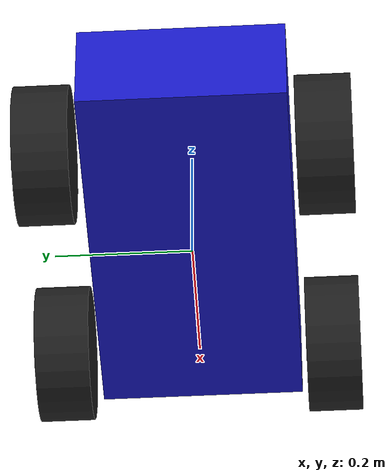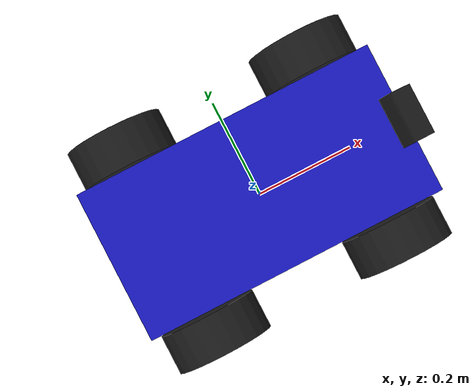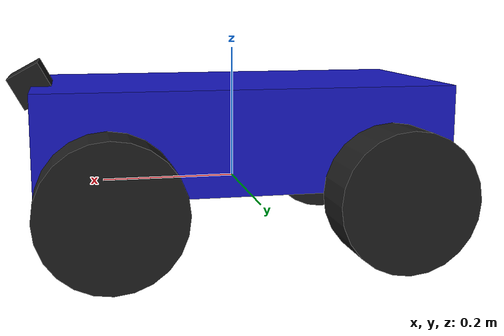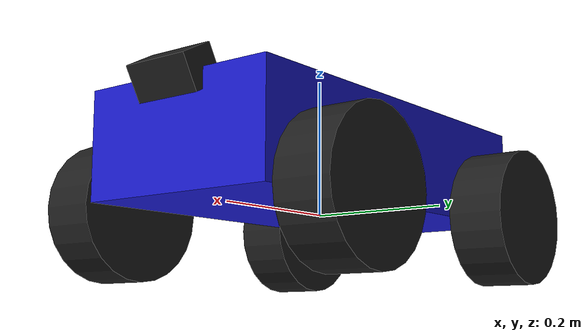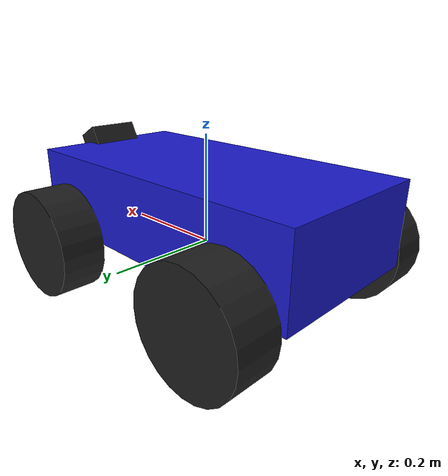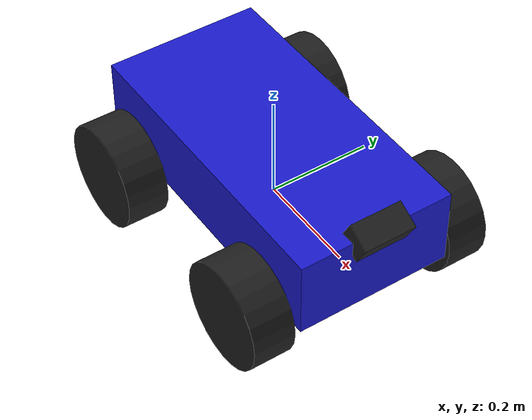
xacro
<?xml version="1.0"?>
<robot name="autonomous_car" xmlns:xacro="http://www.ros.org/wiki/xacro">

  <xacro:property name="chassis_length" value="0.6"/>
  <xacro:property name="chassis_width" value="0.3"/>
  <xacro:property name="chassis_height" value="0.15"/>
  <xacro:property name="chassis_mass" value="10.0"/>

  <xacro:property name="wheel_radius" value="0.1"/>
  <xacro:property name="wheel_width" value="0.08"/>
  <xacro:property name="wheel_mass" value="1.0"/>

  <link name="base_footprint"/>

  <joint name="base_footprint_joint" type="fixed">
    <parent link="base_footprint"/>
    <child link="base_link"/>
    <origin xyz="0 0 0" rpy="0 0 0"/>
  </joint>

  <link name="base_link">
    <visual>
      <origin xyz="0 0 ${chassis_height/2}" rpy="0 0 0"/>
      <geometry><box size="${chassis_length} ${chassis_width} ${chassis_height}"/></geometry>
      <material name="blue"><color rgba="0.1 0.1 0.8 1.0"/></material>
    </visual>
    <collision>
      <origin xyz="0 0 ${chassis_height/2}" rpy="0 0 0"/>
      <geometry><box size="${chassis_length} ${chassis_width} ${chassis_height}"/></geometry>
    </collision>
    <inertial>
      <origin xyz="0 0 0.05" rpy="0 0 0"/>
      <mass value="${chassis_mass}"/>
      <inertia ixx="0.09" ixy="0" ixz="0" iyy="0.32" iyz="0" izz="0.37"/>
    </inertial>
  </link>
  <gazebo reference="base_link"><material>Gazebo/Blue</material></gazebo>

  <link name="rear_left_wheel">
    <visual>
      <origin xyz="0 0 0" rpy="1.5708 0 0"/>
      <geometry><cylinder radius="${wheel_radius}" length="${wheel_width}"/></geometry>
      <material name="black"/>
    </visual>
    <collision>
      <origin xyz="0 0 0" rpy="1.5708 0 0"/>
      <geometry><cylinder radius="${wheel_radius}" length="${wheel_width}"/></geometry>
    </collision>
    <inertial>
      <mass value="${wheel_mass}"/>
      <inertia ixx="0.003" ixy="0" ixz="0" iyy="0.003" iyz="0" izz="0.005"/>
    </inertial>
  </link>
  <joint name="rear_left_wheel_joint" type="continuous">
    <parent link="base_link"/>
    <child link="rear_left_wheel"/>
    <origin xyz="-0.2 0.2 0" rpy="0 0 0"/>
    <axis xyz="0 1 0"/>
    <limit effort="1000.0" velocity="100.0"/>
    <dynamics damping="0.5" friction="0.5"/>
  </joint>
  <gazebo reference="rear_left_wheel">
    <material>Gazebo/Black</material>
    <mu1>0.9</mu1><mu2>0.9</mu2>
  </gazebo>

  <link name="rear_right_wheel">
    <visual>
      <origin xyz="0 0 0" rpy="1.5708 0 0"/>
      <geometry><cylinder radius="${wheel_radius}" length="${wheel_width}"/></geometry>
      <material name="black"/>
    </visual>
    <collision>
      <origin xyz="0 0 0" rpy="1.5708 0 0"/>
      <geometry><cylinder radius="${wheel_radius}" length="${wheel_width}"/></geometry>
    </collision>
    <inertial>
      <mass value="${wheel_mass}"/>
      <inertia ixx="0.003" ixy="0" ixz="0" iyy="0.003" iyz="0" izz="0.005"/>
    </inertial>
  </link>
  <joint name="rear_right_wheel_joint" type="continuous">
    <parent link="base_link"/>
    <child link="rear_right_wheel"/>
    <origin xyz="-0.2 -0.2 0" rpy="0 0 0"/>
    <axis xyz="0 1 0"/>
    <limit effort="1000.0" velocity="100.0"/>
    <dynamics damping="0.5" friction="0.5"/>
  </joint>
  <gazebo reference="rear_right_wheel">
    <material>Gazebo/Black</material>
    <mu1>0.9</mu1><mu2>0.9</mu2>
  </gazebo>

  <link name="front_left_steer_link">
    <inertial><mass value="0.5"/><inertia ixx="0.001" ixy="0" ixz="0" iyy="0.001" iyz="0" izz="0.001"/></inertial>
  </link>
  <joint name="front_left_steer_joint" type="revolute">
    <parent link="base_link"/>
    <child link="front_left_steer_link"/>
    <origin xyz="0.2 0.2 0" rpy="0 0 0"/>
    <axis xyz="0 0 1"/>
    <limit lower="-0.6" upper="0.6" effort="50.0" velocity="5.0"/>
    <dynamics damping="0.5" friction="0.5"/>
  </joint>

  <link name="front_left_wheel">
    <visual>
      <origin xyz="0 0 0" rpy="1.5708 0 0"/>
      <geometry><cylinder radius="${wheel_radius}" length="${wheel_width}"/></geometry>
      <material name="black"/>
    </visual>
    <collision>
      <origin xyz="0 0 0" rpy="1.5708 0 0"/>
      <geometry><cylinder radius="${wheel_radius}" length="${wheel_width}"/></geometry>
    </collision>
    <inertial>
      <mass value="${wheel_mass}"/>
      <inertia ixx="0.003" ixy="0" ixz="0" iyy="0.003" iyz="0" izz="0.005"/>
    </inertial>
  </link>
  <joint name="front_left_wheel_joint" type="continuous">
    <parent link="front_left_steer_link"/>
    <child link="front_left_wheel"/>
    <origin xyz="0 0 0" rpy="0 0 0"/>
    <axis xyz="0 1 0"/>
    <limit effort="1000.0" velocity="100.0"/>
    <dynamics damping="0.5" friction="0.5"/>
  </joint>
  <gazebo reference="front_left_wheel">
    <material>Gazebo/Black</material>
    <mu1>0.9</mu1><mu2>0.9</mu2>
  </gazebo>

  <link name="front_right_steer_link">
    <inertial><mass value="0.5"/><inertia ixx="0.001" ixy="0" ixz="0" iyy="0.001" iyz="0" izz="0.001"/></inertial>
  </link>
  <joint name="front_right_steer_joint" type="revolute">
    <parent link="base_link"/>
    <child link="front_right_steer_link"/>
    <origin xyz="0.2 -0.2 0" rpy="0 0 0"/>
    <axis xyz="0 0 1"/>
    <limit lower="-0.6" upper="0.6" effort="50.0" velocity="5.0"/>
    <dynamics damping="0.5" friction="0.5"/>
  </joint>

  <link name="front_right_wheel">
    <visual>
      <origin xyz="0 0 0" rpy="1.5708 0 0"/>
      <geometry><cylinder radius="${wheel_radius}" length="${wheel_width}"/></geometry>
      <material name="black"/>
    </visual>
    <collision>
      <origin xyz="0 0 0" rpy="1.5708 0 0"/>
      <geometry><cylinder radius="${wheel_radius}" length="${wheel_width}"/></geometry>
    </collision>
    <inertial>
      <mass value="${wheel_mass}"/>
      <inertia ixx="0.003" ixy="0" ixz="0" iyy="0.003" iyz="0" izz="0.005"/>
    </inertial>
  </link>
  <joint name="front_right_wheel_joint" type="continuous">
    <parent link="front_right_steer_link"/>
    <child link="front_right_wheel"/>
    <origin xyz="0 0 0" rpy="0 0 0"/>
    <axis xyz="0 1 0"/>
    <limit effort="1000.0" velocity="100.0"/>
    <dynamics damping="0.5" friction="0.5"/>
  </joint>
  <gazebo reference="front_right_wheel">
    <material>Gazebo/Black</material>
    <mu1>0.9</mu1><mu2>0.9</mu2>
  </gazebo>

  <link name="camera_link">
    <visual>
      <origin xyz="0 0 0" rpy="0 0 0"/>
      <geometry><box size="0.05 0.1 0.05"/></geometry>
      <material name="black"/>
    </visual>
    <collision><geometry><box size="0.05 0.1 0.05"/></geometry></collision>
    <inertial><mass value="0.05"/><inertia ixx="0.0001" ixy="0" ixz="0" iyy="0.0001" iyz="0" izz="0.0001"/></inertial>
  </link>
  <joint name="camera_joint" type="fixed">
    <parent link="base_link"/>
    <child link="camera_link"/>
    <origin xyz="${chassis_length/2} 0 ${chassis_height}" rpy="0 0.5 0"/>
  </joint>
<gazebo reference="camera_link">
    <sensor type="camera" name="my_front_camera">
      <always_on>true</always_on> <visualize>true</visualize> <update_rate>30.0</update_rate>
      <camera name="head">
        <horizontal_fov>1.3962634</horizontal_fov>
        <image><width>640</width><height>480</height><format>R8G8B8</format></image>
        <clip><near>0.02</near><far>300</far></clip>
      </camera>
      <plugin name="camera_controller" filename="libgazebo_ros_camera.so">
        <ros>
          <remapping>~/image_raw:=/camera/image_raw</remapping>
        </ros>
        <camera_name>camera</camera_name>
        <frame_name>camera_link</frame_name>
      </plugin>
    </sensor>
  </gazebo>

  <gazebo>
    <plugin name="gazebo_ros_ackermann_drive" filename="libgazebo_ros_ackermann_drive.so">
      <ros>
        <namespace>/</namespace>
        <remapping>cmd_vel:=cmd_vel</remapping>
        <remapping>odom:=odom</remapping>
      </ros>
      <update_rate>100.0</update_rate>
      <front_left_joint>front_left_wheel_joint</front_left_joint>
      <front_right_joint>front_right_wheel_joint</front_right_joint>
      <rear_left_joint>rear_left_wheel_joint</rear_left_joint>
      <rear_right_joint>rear_right_wheel_joint</rear_right_joint>
      <left_steering_joint>front_left_steer_joint</left_steering_joint>
      <right_steering_joint>front_right_steer_joint</right_steering_joint>
      <wheel_separation>0.4</wheel_separation>
      <wheel_base>0.4</wheel_base>
      <wheel_diameter>0.2</wheel_diameter>

      <max_wheel_torque>5000.0</max_wheel_torque>
      <max_wheel_acceleration>10.0</max_wheel_acceleration>

      <left_steering_pid_gain>10 0 1</left_steering_pid_gain>
      <right_steering_pid_gain>10 0 1</right_steering_pid_gain>
      <linear_velocity_pid_gain>100 0 1</linear_velocity_pid_gain>

      <max_steering_angle>0.6</max_steering_angle>
      <max_steer>0.6</max_steer>
      <max_speed>5.0</max_speed>
      <publish_odom>true</publish_odom>
      <publish_odom_tf>true</publish_odom_tf>
      <publish_wheel_tf>true</publish_wheel_tf>
      <odometry_frame>odom</odometry_frame>
      <robot_base_frame>base_footprint</robot_base_frame>
    </plugin>
  </gazebo>
</robot>
